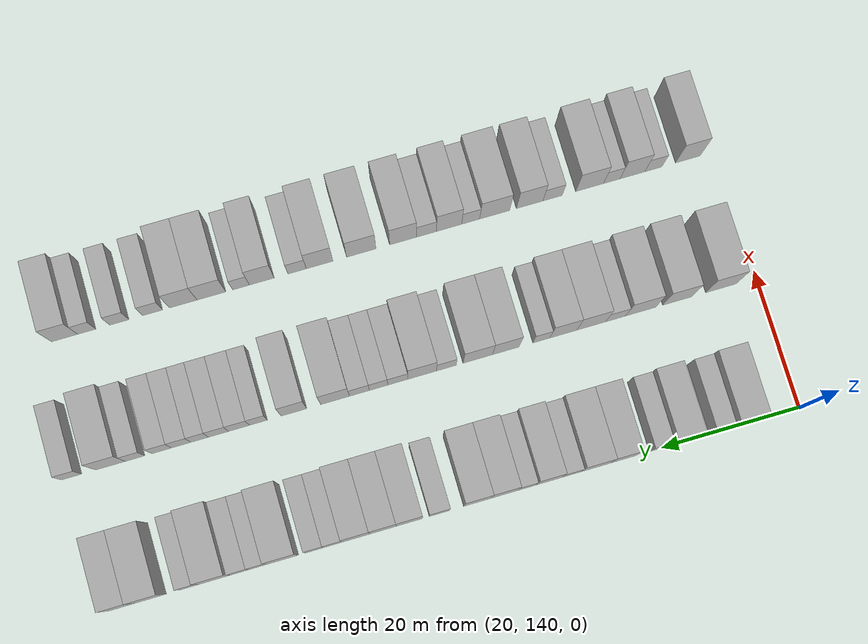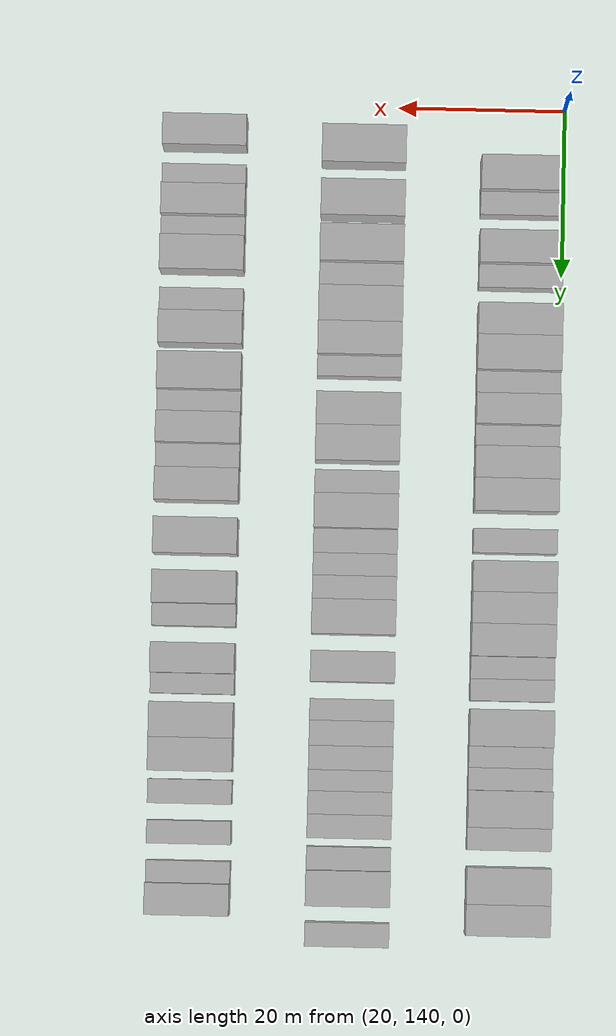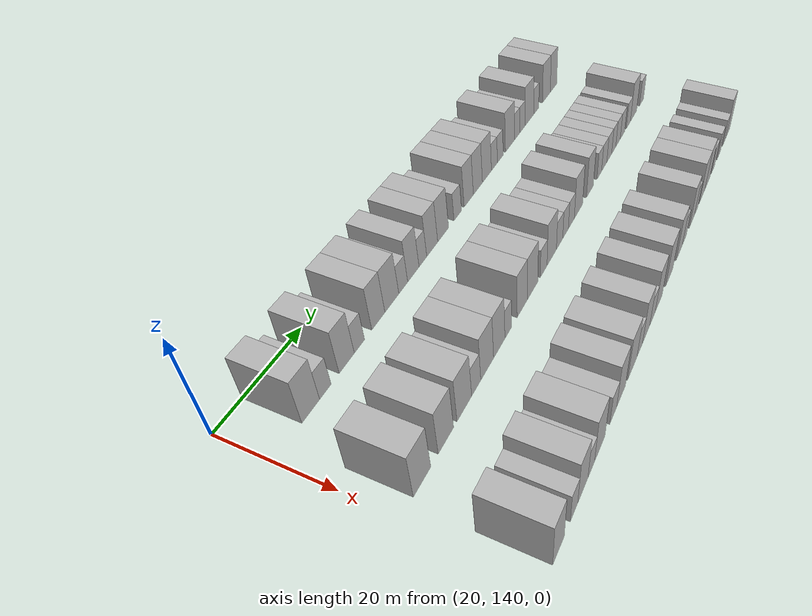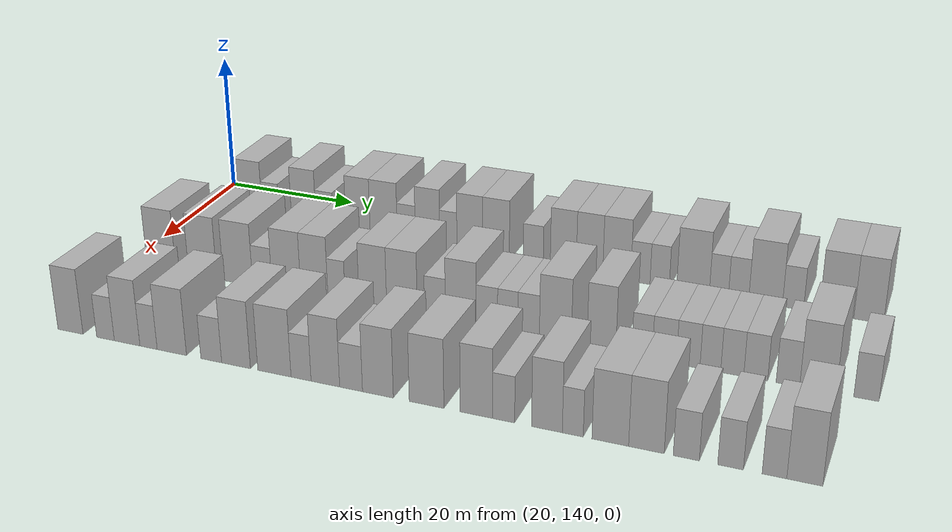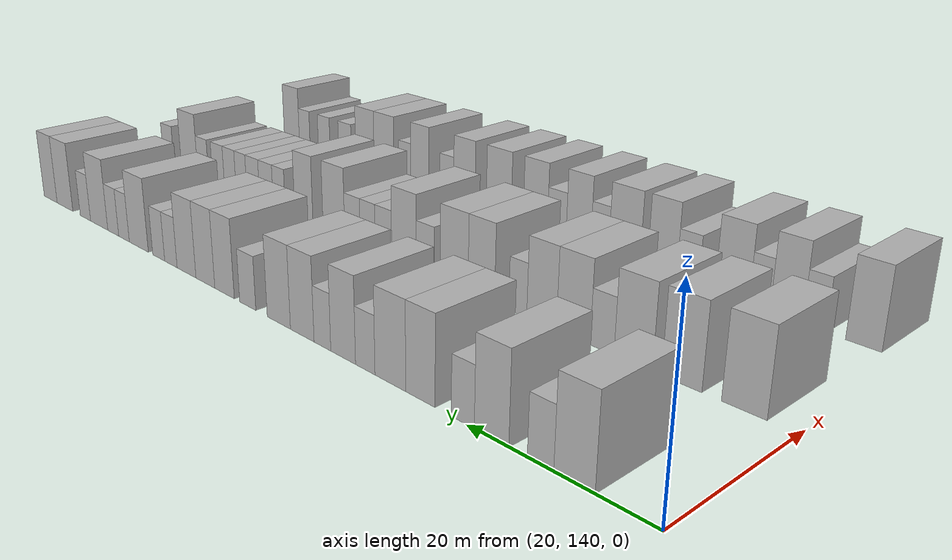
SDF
<sdf version="1.6">
 <world name="default">
  <model name="building_101">
   <static>1</static>
   <pose>25.0000 148.2969 0 0.000000 0.000000 0.000000</pose>
   <link name="link">
    <pose>0 0 4.50 0 0 0</pose>
    <collision name="collision"><geometry><box><size>10.0000 4.1255 9.0000</size></box></geometry></collision>
    <visual name="visual">
     <cast_shadows>0</cast_shadows>
     <geometry><box><size>10.0000 4.1255 9.0000</size></box></geometry>
     <material>
      <script>
       <uri>model://HANNAS_wall/materials/scripts</uri>
       <uri>model://HANNAS_wall/materials/textures</uri>
       <name>vrc/HANNAS_wall</name>
      </script>
     </material>
    </visual>
   </link>
  </model>
  <model name="building_102">
   <static>1</static>
   <pose>25.0000 151.7468 0 0.000000 0.000000 0.000000</pose>
   <link name="link">
    <pose>0 0 3.00 0 0 0</pose>
    <collision name="collision"><geometry><box><size>10.0000 2.7741 6.0000</size></box></geometry></collision>
    <visual name="visual">
     <cast_shadows>0</cast_shadows>
     <geometry><box><size>10.0000 2.7741 6.0000</size></box></geometry>
     <material>
      <script>
       <uri>model://HANNAS_wall/materials/scripts</uri>
       <uri>model://HANNAS_wall/materials/textures</uri>
       <name>vrc/HANNAS_wall</name>
      </script>
     </material>
    </visual>
   </link>
  </model>
  <model name="building_103">
   <static>1</static>
   <pose>25.0000 157.0966 0 0.000000 0.000000 0.000000</pose>
   <link name="link">
    <pose>0 0 4.50 0 0 0</pose>
    <collision name="collision"><geometry><box><size>10.0000 3.9255 9.0000</size></box></geometry></collision>
    <visual name="visual">
     <cast_shadows>0</cast_shadows>
     <geometry><box><size>10.0000 3.9255 9.0000</size></box></geometry>
     <material>
      <script>
       <uri>model://HANNAS_wall/materials/scripts</uri>
       <uri>model://HANNAS_wall/materials/textures</uri>
       <name>vrc/HANNAS_wall</name>
      </script>
     </material>
    </visual>
   </link>
  </model>
  <model name="building_104">
   <static>1</static>
   <pose>25.0000 160.4372 0 0.000000 0.000000 0.000000</pose>
   <link name="link">
    <pose>0 0 3.00 0 0 0</pose>
    <collision name="collision"><geometry><box><size>10.0000 2.7559 6.0000</size></box></geometry></collision>
    <visual name="visual">
     <cast_shadows>0</cast_shadows>
     <geometry><box><size>10.0000 2.7559 6.0000</size></box></geometry>
     <material>
      <script>
       <uri>model://HANNAS_wall/materials/scripts</uri>
       <uri>model://HANNAS_wall/materials/textures</uri>
       <name>vrc/HANNAS_wall</name>
      </script>
     </material>
    </visual>
   </link>
  </model>
  <model name="building_105">
   <static>1</static>
   <pose>25.0000 165.6991 0 0.000000 0.000000 0.000000</pose>
   <link name="link">
    <pose>0 0 4.50 0 0 0</pose>
    <collision name="collision"><geometry><box><size>10.0000 3.7678 9.0000</size></box></geometry></collision>
    <visual name="visual">
     <cast_shadows>0</cast_shadows>
     <geometry><box><size>10.0000 3.7678 9.0000</size></box></geometry>
     <material>
      <script>
       <uri>model://HANNAS_wall/materials/scripts</uri>
       <uri>model://HANNAS_wall/materials/textures</uri>
       <name>vrc/HANNAS_wall</name>
      </script>
     </material>
    </visual>
   </link>
  </model>
  <model name="building_106">
   <static>1</static>
   <pose>25.0000 169.6769 0 0.000000 0.000000 0.000000</pose>
   <link name="link">
    <pose>0 0 4.50 0 0 0</pose>
    <collision name="collision"><geometry><box><size>10.0000 4.1878 9.0000</size></box></geometry></collision>
    <visual name="visual">
     <cast_shadows>0</cast_shadows>
     <geometry><box><size>10.0000 4.1878 9.0000</size></box></geometry>
     <material>
      <script>
       <uri>model://HANNAS_wall/materials/scripts</uri>
       <uri>model://HANNAS_wall/materials/textures</uri>
       <name>vrc/HANNAS_wall</name>
      </script>
     </material>
    </visual>
   </link>
  </model>
  <model name="building_107">
   <static>1</static>
   <pose>25.0000 173.1553 0 0.000000 0.000000 0.000000</pose>
   <link name="link">
    <pose>0 0 3.00 0 0 0</pose>
    <collision name="collision"><geometry><box><size>10.0000 2.7689 6.0000</size></box></geometry></collision>
    <visual name="visual">
     <cast_shadows>0</cast_shadows>
     <geometry><box><size>10.0000 2.7689 6.0000</size></box></geometry>
     <material>
      <script>
       <uri>model://HANNAS_wall/materials/scripts</uri>
       <uri>model://HANNAS_wall/materials/textures</uri>
       <name>vrc/HANNAS_wall</name>
      </script>
     </material>
    </visual>
   </link>
  </model>
  <model name="building_108">
   <static>1</static>
   <pose>25.0000 176.3779 0 0.000000 0.000000 0.000000</pose>
   <link name="link">
    <pose>0 0 4.50 0 0 0</pose>
    <collision name="collision"><geometry><box><size>10.0000 3.6763 9.0000</size></box></geometry></collision>
    <visual name="visual">
     <cast_shadows>0</cast_shadows>
     <geometry><box><size>10.0000 3.6763 9.0000</size></box></geometry>
     <material>
      <script>
       <uri>model://HANNAS_wall/materials/scripts</uri>
       <uri>model://HANNAS_wall/materials/textures</uri>
       <name>vrc/HANNAS_wall</name>
      </script>
     </material>
    </visual>
   </link>
  </model>
  <model name="building_109">
   <static>1</static>
   <pose>25.0000 179.5077 0 0.000000 0.000000 0.000000</pose>
   <link name="link">
    <pose>0 0 3.00 0 0 0</pose>
    <collision name="collision"><geometry><box><size>10.0000 2.5833 6.0000</size></box></geometry></collision>
    <visual name="visual">
     <cast_shadows>0</cast_shadows>
     <geometry><box><size>10.0000 2.5833 6.0000</size></box></geometry>
     <material>
      <script>
       <uri>model://HANNAS_wall/materials/scripts</uri>
       <uri>model://HANNAS_wall/materials/textures</uri>
       <name>vrc/HANNAS_wall</name>
      </script>
     </material>
    </visual>
   </link>
  </model>
  <model name="building_110">
   <static>1</static>
   <pose>25.0000 182.6997 0 0.000000 0.000000 0.000000</pose>
   <link name="link">
    <pose>0 0 4.50 0 0 0</pose>
    <collision name="collision"><geometry><box><size>10.0000 3.8007 9.0000</size></box></geometry></collision>
    <visual name="visual">
     <cast_shadows>0</cast_shadows>
     <geometry><box><size>10.0000 3.8007 9.0000</size></box></geometry>
     <material>
      <script>
       <uri>model://HANNAS_wall/materials/scripts</uri>
       <uri>model://HANNAS_wall/materials/textures</uri>
       <name>vrc/HANNAS_wall</name>
      </script>
     </material>
    </visual>
   </link>
  </model>
  <model name="building_111">
   <static>1</static>
   <pose>25.0000 186.5590 0 0.000000 0.000000 0.000000</pose>
   <link name="link">
    <pose>0 0 4.50 0 0 0</pose>
    <collision name="collision"><geometry><box><size>10.0000 3.9180 9.0000</size></box></geometry></collision>
    <visual name="visual">
     <cast_shadows>0</cast_shadows>
     <geometry><box><size>10.0000 3.9180 9.0000</size></box></geometry>
     <material>
      <script>
       <uri>model://HANNAS_wall/materials/scripts</uri>
       <uri>model://HANNAS_wall/materials/textures</uri>
       <name>vrc/HANNAS_wall</name>
      </script>
     </material>
    </visual>
   </link>
  </model>
  <model name="building_112">
   <static>1</static>
   <pose>25.0000 191.9698 0 0.000000 0.000000 0.000000</pose>
   <link name="link">
    <pose>0 0 3.00 0 0 0</pose>
    <collision name="collision"><geometry><box><size>10.0000 2.9034 6.0000</size></box></geometry></collision>
    <visual name="visual">
     <cast_shadows>0</cast_shadows>
     <geometry><box><size>10.0000 2.9034 6.0000</size></box></geometry>
     <material>
      <script>
       <uri>model://HANNAS_wall/materials/scripts</uri>
       <uri>model://HANNAS_wall/materials/textures</uri>
       <name>vrc/HANNAS_wall</name>
      </script>
     </material>
    </visual>
   </link>
  </model>
  <model name="building_113">
   <static>1</static>
   <pose>25.0000 196.2651 0 0.000000 0.000000 0.000000</pose>
   <link name="link">
    <pose>0 0 4.50 0 0 0</pose>
    <collision name="collision"><geometry><box><size>10.0000 3.6873 9.0000</size></box></geometry></collision>
    <visual name="visual">
     <cast_shadows>0</cast_shadows>
     <geometry><box><size>10.0000 3.6873 9.0000</size></box></geometry>
     <material>
      <script>
       <uri>model://HANNAS_wall/materials/scripts</uri>
       <uri>model://HANNAS_wall/materials/textures</uri>
       <name>vrc/HANNAS_wall</name>
      </script>
     </material>
    </visual>
   </link>
  </model>
  <model name="building_114">
   <static>1</static>
   <pose>25.0000 199.9749 0 0.000000 0.000000 0.000000</pose>
   <link name="link">
    <pose>0 0 4.50 0 0 0</pose>
    <collision name="collision"><geometry><box><size>10.0000 3.7323 9.0000</size></box></geometry></collision>
    <visual name="visual">
     <cast_shadows>0</cast_shadows>
     <geometry><box><size>10.0000 3.7323 9.0000</size></box></geometry>
     <material>
      <script>
       <uri>model://HANNAS_wall/materials/scripts</uri>
       <uri>model://HANNAS_wall/materials/textures</uri>
       <name>vrc/HANNAS_wall</name>
      </script>
     </material>
    </visual>
   </link>
  </model>
  <model name="building_115">
   <static>1</static>
   <pose>25.0000 203.7826 0 0.000000 0.000000 0.000000</pose>
   <link name="link">
    <pose>0 0 4.50 0 0 0</pose>
    <collision name="collision"><geometry><box><size>10.0000 3.8831 9.0000</size></box></geometry></collision>
    <visual name="visual">
     <cast_shadows>0</cast_shadows>
     <geometry><box><size>10.0000 3.8831 9.0000</size></box></geometry>
     <material>
      <script>
       <uri>model://HANNAS_wall/materials/scripts</uri>
       <uri>model://HANNAS_wall/materials/textures</uri>
       <name>vrc/HANNAS_wall</name>
      </script>
     </material>
    </visual>
   </link>
  </model>
  <model name="building_116">
   <static>1</static>
   <pose>25.0000 207.0530 0 0.000000 0.000000 0.000000</pose>
   <link name="link">
    <pose>0 0 3.00 0 0 0</pose>
    <collision name="collision"><geometry><box><size>10.0000 2.6576 6.0000</size></box></geometry></collision>
    <visual name="visual">
     <cast_shadows>0</cast_shadows>
     <geometry><box><size>10.0000 2.6576 6.0000</size></box></geometry>
     <material>
      <script>
       <uri>model://HANNAS_wall/materials/scripts</uri>
       <uri>model://HANNAS_wall/materials/textures</uri>
       <name>vrc/HANNAS_wall</name>
      </script>
     </material>
    </visual>
   </link>
  </model>
  <model name="building_117">
   <static>1</static>
   <pose>25.0000 209.6922 0 0.000000 0.000000 0.000000</pose>
   <link name="link">
    <pose>0 0 3.00 0 0 0</pose>
    <collision name="collision"><geometry><box><size>10.0000 2.6209 6.0000</size></box></geometry></collision>
    <visual name="visual">
     <cast_shadows>0</cast_shadows>
     <geometry><box><size>10.0000 2.6209 6.0000</size></box></geometry>
     <material>
      <script>
       <uri>model://HANNAS_wall/materials/scripts</uri>
       <uri>model://HANNAS_wall/materials/textures</uri>
       <name>vrc/HANNAS_wall</name>
      </script>
     </material>
    </visual>
   </link>
  </model>
  <model name="building_118">
   <static>1</static>
   <pose>25.0000 214.1932 0 0.000000 0.000000 0.000000</pose>
   <link name="link">
    <pose>0 0 4.50 0 0 0</pose>
    <collision name="collision"><geometry><box><size>10.0000 4.3811 9.0000</size></box></geometry></collision>
    <visual name="visual">
     <cast_shadows>0</cast_shadows>
     <geometry><box><size>10.0000 4.3811 9.0000</size></box></geometry>
     <material>
      <script>
       <uri>model://HANNAS_wall/materials/scripts</uri>
       <uri>model://HANNAS_wall/materials/textures</uri>
       <name>vrc/HANNAS_wall</name>
      </script>
     </material>
    </visual>
   </link>
  </model>
  <model name="building_119">
   <static>1</static>
   <pose>25.0000 217.6492 0 0.000000 0.000000 0.000000</pose>
   <link name="link">
    <pose>0 0 3.00 0 0 0</pose>
    <collision name="collision"><geometry><box><size>10.0000 2.5310 6.0000</size></box></geometry></collision>
    <visual name="visual">
     <cast_shadows>0</cast_shadows>
     <geometry><box><size>10.0000 2.5310 6.0000</size></box></geometry>
     <material>
      <script>
       <uri>model://HANNAS_wall/materials/scripts</uri>
       <uri>model://HANNAS_wall/materials/textures</uri>
       <name>vrc/HANNAS_wall</name>
      </script>
     </material>
    </visual>
   </link>
  </model>
  <model name="building_120">
   <static>1</static>
   <pose>25.0000 220.2503 0 0.000000 0.000000 0.000000</pose>
   <link name="link">
    <pose>0 0 3.00 0 0 0</pose>
    <collision name="collision"><geometry><box><size>10.0000 2.6712 6.0000</size></box></geometry></collision>
    <visual name="visual">
     <cast_shadows>0</cast_shadows>
     <geometry><box><size>10.0000 2.6712 6.0000</size></box></geometry>
     <material>
      <script>
       <uri>model://HANNAS_wall/materials/scripts</uri>
       <uri>model://HANNAS_wall/materials/textures</uri>
       <name>vrc/HANNAS_wall</name>
      </script>
     </material>
    </visual>
   </link>
  </model>
  <model name="building_121">
   <static>1</static>
   <pose>25.0000 223.7734 0 0.000000 0.000000 0.000000</pose>
   <link name="link">
    <pose>0 0 4.50 0 0 0</pose>
    <collision name="collision"><geometry><box><size>10.0000 4.3749 9.0000</size></box></geometry></collision>
    <visual name="visual">
     <cast_shadows>0</cast_shadows>
     <geometry><box><size>10.0000 4.3749 9.0000</size></box></geometry>
     <material>
      <script>
       <uri>model://HANNAS_wall/materials/scripts</uri>
       <uri>model://HANNAS_wall/materials/textures</uri>
       <name>vrc/HANNAS_wall</name>
      </script>
     </material>
    </visual>
   </link>
  </model>
  <model name="building_122">
   <static>1</static>
   <pose>25.0000 227.3215 0 0.000000 0.000000 0.000000</pose>
   <link name="link">
    <pose>0 0 3.00 0 0 0</pose>
    <collision name="collision"><geometry><box><size>10.0000 2.7213 6.0000</size></box></geometry></collision>
    <visual name="visual">
     <cast_shadows>0</cast_shadows>
     <geometry><box><size>10.0000 2.7213 6.0000</size></box></geometry>
     <material>
      <script>
       <uri>model://HANNAS_wall/materials/scripts</uri>
       <uri>model://HANNAS_wall/materials/textures</uri>
       <name>vrc/HANNAS_wall</name>
      </script>
     </material>
    </visual>
   </link>
  </model>
  <model name="building_123">
   <static>1</static>
   <pose>25.0000 232.8579 0 0.000000 0.000000 0.000000</pose>
   <link name="link">
    <pose>0 0 4.50 0 0 0</pose>
    <collision name="collision"><geometry><box><size>10.0000 4.3513 9.0000</size></box></geometry></collision>
    <visual name="visual">
     <cast_shadows>0</cast_shadows>
     <geometry><box><size>10.0000 4.3513 9.0000</size></box></geometry>
     <material>
      <script>
       <uri>model://HANNAS_wall/materials/scripts</uri>
       <uri>model://HANNAS_wall/materials/textures</uri>
       <name>vrc/HANNAS_wall</name>
      </script>
     </material>
    </visual>
   </link>
  </model>
  <model name="building_124">
   <static>1</static>
   <pose>25.0000 236.8847 0 0.000000 0.000000 0.000000</pose>
   <link name="link">
    <pose>0 0 4.50 0 0 0</pose>
    <collision name="collision"><geometry><box><size>10.0000 3.7024 9.0000</size></box></geometry></collision>
    <visual name="visual">
     <cast_shadows>0</cast_shadows>
     <geometry><box><size>10.0000 3.7024 9.0000</size></box></geometry>
     <material>
      <script>
       <uri>model://HANNAS_wall/materials/scripts</uri>
       <uri>model://HANNAS_wall/materials/textures</uri>
       <name>vrc/HANNAS_wall</name>
      </script>
     </material>
    </visual>
   </link>
  </model>
  <model name="building_219">
   <static>1</static>
   <pose>44.0000 145.2518 0 0.000000 0.000000 0.000000</pose>
   <link name="link">
    <pose>0 0 4.50 0 0 0</pose>
    <collision name="collision"><geometry><box><size>10.0000 4.4981 9.0000</size></box></geometry></collision>
    <visual name="visual">
     <cast_shadows>0</cast_shadows>
     <geometry><box><size>10.0000 4.4981 9.0000</size></box></geometry>
     <material>
      <script>
       <uri>model://HANNAS_wall/materials/scripts</uri>
       <uri>model://HANNAS_wall/materials/textures</uri>
       <name>vrc/HANNAS_wall</name>
      </script>
     </material>
    </visual>
   </link>
  </model>
  <model name="building_220">
   <static>1</static>
   <pose>44.0000 151.6624 0 0.000000 0.000000 0.000000</pose>
   <link name="link">
    <pose>0 0 4.50 0 0 0</pose>
    <collision name="collision"><geometry><box><size>10.0000 4.3231 9.0000</size></box></geometry></collision>
    <visual name="visual">
     <cast_shadows>0</cast_shadows>
     <geometry><box><size>10.0000 4.3231 9.0000</size></box></geometry>
     <material>
      <script>
       <uri>model://HANNAS_wall/materials/scripts</uri>
       <uri>model://HANNAS_wall/materials/textures</uri>
       <name>vrc/HANNAS_wall</name>
      </script>
     </material>
    </visual>
   </link>
  </model>
  <model name="building_221">
   <static>1</static>
   <pose>44.0000 157.0381 0 0.000000 0.000000 0.000000</pose>
   <link name="link">
    <pose>0 0 4.50 0 0 0</pose>
    <collision name="collision"><geometry><box><size>10.0000 4.4282 9.0000</size></box></geometry></collision>
    <visual name="visual">
     <cast_shadows>0</cast_shadows>
     <geometry><box><size>10.0000 4.4282 9.0000</size></box></geometry>
     <material>
      <script>
       <uri>model://HANNAS_wall/materials/scripts</uri>
       <uri>model://HANNAS_wall/materials/textures</uri>
       <name>vrc/HANNAS_wall</name>
      </script>
     </material>
    </visual>
   </link>
  </model>
  <model name="building_222">
   <static>1</static>
   <pose>44.0000 160.6944 0 0.000000 0.000000 0.000000</pose>
   <link name="link">
    <pose>0 0 3.00 0 0 0</pose>
    <collision name="collision"><geometry><box><size>10.0000 2.8845 6.0000</size></box></geometry></collision>
    <visual name="visual">
     <cast_shadows>0</cast_shadows>
     <geometry><box><size>10.0000 2.8845 6.0000</size></box></geometry>
     <material>
      <script>
       <uri>model://HANNAS_wall/materials/scripts</uri>
       <uri>model://HANNAS_wall/materials/textures</uri>
       <name>vrc/HANNAS_wall</name>
      </script>
     </material>
    </visual>
   </link>
  </model>
  <model name="building_223">
   <static>1</static>
   <pose>44.0000 164.2596 0 0.000000 0.000000 0.000000</pose>
   <link name="link">
    <pose>0 0 4.50 0 0 0</pose>
    <collision name="collision"><geometry><box><size>10.0000 4.2458 9.0000</size></box></geometry></collision>
    <visual name="visual">
     <cast_shadows>0</cast_shadows>
     <geometry><box><size>10.0000 4.2458 9.0000</size></box></geometry>
     <material>
      <script>
       <uri>model://HANNAS_wall/materials/scripts</uri>
       <uri>model://HANNAS_wall/materials/textures</uri>
       <name>vrc/HANNAS_wall</name>
      </script>
     </material>
    </visual>
   </link>
  </model>
  <model name="building_224">
   <static>1</static>
   <pose>44.0000 168.3524 0 0.000000 0.000000 0.000000</pose>
   <link name="link">
    <pose>0 0 4.50 0 0 0</pose>
    <collision name="collision"><geometry><box><size>10.0000 3.9399 9.0000</size></box></geometry></collision>
    <visual name="visual">
     <cast_shadows>0</cast_shadows>
     <geometry><box><size>10.0000 3.9399 9.0000</size></box></geometry>
     <material>
      <script>
       <uri>model://HANNAS_wall/materials/scripts</uri>
       <uri>model://HANNAS_wall/materials/textures</uri>
       <name>vrc/HANNAS_wall</name>
      </script>
     </material>
    </visual>
   </link>
  </model>
  <model name="building_225">
   <static>1</static>
   <pose>44.0000 171.5598 0 0.000000 0.000000 0.000000</pose>
   <link name="link">
    <pose>0 0 3.00 0 0 0</pose>
    <collision name="collision"><geometry><box><size>10.0000 2.4748 6.0000</size></box></geometry></collision>
    <visual name="visual">
     <cast_shadows>0</cast_shadows>
     <geometry><box><size>10.0000 2.4748 6.0000</size></box></geometry>
     <material>
      <script>
       <uri>model://HANNAS_wall/materials/scripts</uri>
       <uri>model://HANNAS_wall/materials/textures</uri>
       <name>vrc/HANNAS_wall</name>
      </script>
     </material>
    </visual>
   </link>
  </model>
  <model name="building_226">
   <static>1</static>
   <pose>44.0000 176.7424 0 0.000000 0.000000 0.000000</pose>
   <link name="link">
    <pose>0 0 4.50 0 0 0</pose>
    <collision name="collision"><geometry><box><size>10.0000 3.8902 9.0000</size></box></geometry></collision>
    <visual name="visual">
     <cast_shadows>0</cast_shadows>
     <geometry><box><size>10.0000 3.8902 9.0000</size></box></geometry>
     <material>
      <script>
       <uri>model://HANNAS_wall/materials/scripts</uri>
       <uri>model://HANNAS_wall/materials/textures</uri>
       <name>vrc/HANNAS_wall</name>
      </script>
     </material>
    </visual>
   </link>
  </model>
  <model name="building_227">
   <static>1</static>
   <pose>44.0000 180.8184 0 0.000000 0.000000 0.000000</pose>
   <link name="link">
    <pose>0 0 4.50 0 0 0</pose>
    <collision name="collision"><geometry><box><size>10.0000 4.2618 9.0000</size></box></geometry></collision>
    <visual name="visual">
     <cast_shadows>0</cast_shadows>
     <geometry><box><size>10.0000 4.2618 9.0000</size></box></geometry>
     <material>
      <script>
       <uri>model://HANNAS_wall/materials/scripts</uri>
       <uri>model://HANNAS_wall/materials/textures</uri>
       <name>vrc/HANNAS_wall</name>
      </script>
     </material>
    </visual>
   </link>
  </model>
  <model name="building_228">
   <static>1</static>
   <pose>44.0000 185.3786 0 0.000000 0.000000 0.000000</pose>
   <link name="link">
    <pose>0 0 3.00 0 0 0</pose>
    <collision name="collision"><geometry><box><size>10.0000 2.8586 6.0000</size></box></geometry></collision>
    <visual name="visual">
     <cast_shadows>0</cast_shadows>
     <geometry><box><size>10.0000 2.8586 6.0000</size></box></geometry>
     <material>
      <script>
       <uri>model://HANNAS_wall/materials/scripts</uri>
       <uri>model://HANNAS_wall/materials/textures</uri>
       <name>vrc/HANNAS_wall</name>
      </script>
     </material>
    </visual>
   </link>
  </model>
  <model name="building_229">
   <static>1</static>
   <pose>44.0000 188.8712 0 0.000000 0.000000 0.000000</pose>
   <link name="link">
    <pose>0 0 4.50 0 0 0</pose>
    <collision name="collision"><geometry><box><size>10.0000 4.1266 9.0000</size></box></geometry></collision>
    <visual name="visual">
     <cast_shadows>0</cast_shadows>
     <geometry><box><size>10.0000 4.1266 9.0000</size></box></geometry>
     <material>
      <script>
       <uri>model://HANNAS_wall/materials/scripts</uri>
       <uri>model://HANNAS_wall/materials/textures</uri>
       <name>vrc/HANNAS_wall</name>
      </script>
     </material>
    </visual>
   </link>
  </model>
  <model name="building_230">
   <static>1</static>
   <pose>44.0000 192.3795 0 0.000000 0.000000 0.000000</pose>
   <link name="link">
    <pose>0 0 3.00 0 0 0</pose>
    <collision name="collision"><geometry><box><size>10.0000 2.8900 6.0000</size></box></geometry></collision>
    <visual name="visual">
     <cast_shadows>0</cast_shadows>
     <geometry><box><size>10.0000 2.8900 6.0000</size></box></geometry>
     <material>
      <script>
       <uri>model://HANNAS_wall/materials/scripts</uri>
       <uri>model://HANNAS_wall/materials/textures</uri>
       <name>vrc/HANNAS_wall</name>
      </script>
     </material>
    </visual>
   </link>
  </model>
  <model name="building_231">
   <static>1</static>
   <pose>44.0000 195.1591 0 0.000000 0.000000 0.000000</pose>
   <link name="link">
    <pose>0 0 3.00 0 0 0</pose>
    <collision name="collision"><geometry><box><size>10.0000 2.6690 6.0000</size></box></geometry></collision>
    <visual name="visual">
     <cast_shadows>0</cast_shadows>
     <geometry><box><size>10.0000 2.6690 6.0000</size></box></geometry>
     <material>
      <script>
       <uri>model://HANNAS_wall/materials/scripts</uri>
       <uri>model://HANNAS_wall/materials/textures</uri>
       <name>vrc/HANNAS_wall</name>
      </script>
     </material>
    </visual>
   </link>
  </model>
  <model name="building_232">
   <static>1</static>
   <pose>44.0000 197.9209 0 0.000000 0.000000 0.000000</pose>
   <link name="link">
    <pose>0 0 3.00 0 0 0</pose>
    <collision name="collision"><geometry><box><size>10.0000 2.8547 6.0000</size></box></geometry></collision>
    <visual name="visual">
     <cast_shadows>0</cast_shadows>
     <geometry><box><size>10.0000 2.8547 6.0000</size></box></geometry>
     <material>
      <script>
       <uri>model://HANNAS_wall/materials/scripts</uri>
       <uri>model://HANNAS_wall/materials/textures</uri>
       <name>vrc/HANNAS_wall</name>
      </script>
     </material>
    </visual>
   </link>
  </model>
  <model name="building_233">
   <static>1</static>
   <pose>44.0000 201.4194 0 0.000000 0.000000 0.000000</pose>
   <link name="link">
    <pose>0 0 4.50 0 0 0</pose>
    <collision name="collision"><geometry><box><size>10.0000 4.1422 9.0000</size></box></geometry></collision>
    <visual name="visual">
     <cast_shadows>0</cast_shadows>
     <geometry><box><size>10.0000 4.1422 9.0000</size></box></geometry>
     <material>
      <script>
       <uri>model://HANNAS_wall/materials/scripts</uri>
       <uri>model://HANNAS_wall/materials/textures</uri>
       <name>vrc/HANNAS_wall</name>
      </script>
     </material>
    </visual>
   </link>
  </model>
  <model name="building_234">
   <static>1</static>
   <pose>44.0000 207.3234 0 0.000000 0.000000 0.000000</pose>
   <link name="link">
    <pose>0 0 4.50 0 0 0</pose>
    <collision name="collision"><geometry><box><size>10.0000 3.6658 9.0000</size></box></geometry></collision>
    <visual name="visual">
     <cast_shadows>0</cast_shadows>
     <geometry><box><size>10.0000 3.6658 9.0000</size></box></geometry>
     <material>
      <script>
       <uri>model://HANNAS_wall/materials/scripts</uri>
       <uri>model://HANNAS_wall/materials/textures</uri>
       <name>vrc/HANNAS_wall</name>
      </script>
     </material>
    </visual>
   </link>
  </model>
  <model name="building_235">
   <static>1</static>
   <pose>44.0000 212.4355 0 0.000000 0.000000 0.000000</pose>
   <link name="link">
    <pose>0 0 3.00 0 0 0</pose>
    <collision name="collision"><geometry><box><size>10.0000 2.5584 6.0000</size></box></geometry></collision>
    <visual name="visual">
     <cast_shadows>0</cast_shadows>
     <geometry><box><size>10.0000 2.5584 6.0000</size></box></geometry>
     <material>
      <script>
       <uri>model://HANNAS_wall/materials/scripts</uri>
       <uri>model://HANNAS_wall/materials/textures</uri>
       <name>vrc/HANNAS_wall</name>
      </script>
     </material>
    </visual>
   </link>
  </model>
  <model name="building_236">
   <static>1</static>
   <pose>44.0000 215.2101 0 0.000000 0.000000 0.000000</pose>
   <link name="link">
    <pose>0 0 3.00 0 0 0</pose>
    <collision name="collision"><geometry><box><size>10.0000 2.9909 6.0000</size></box></geometry></collision>
    <visual name="visual">
     <cast_shadows>0</cast_shadows>
     <geometry><box><size>10.0000 2.9909 6.0000</size></box></geometry>
     <material>
      <script>
       <uri>model://HANNAS_wall/materials/scripts</uri>
       <uri>model://HANNAS_wall/materials/textures</uri>
       <name>vrc/HANNAS_wall</name>
      </script>
     </material>
    </visual>
   </link>
  </model>
  <model name="building_237">
   <static>1</static>
   <pose>44.0000 218.1411 0 0.000000 0.000000 0.000000</pose>
   <link name="link">
    <pose>0 0 3.00 0 0 0</pose>
    <collision name="collision"><geometry><box><size>10.0000 2.8710 6.0000</size></box></geometry></collision>
    <visual name="visual">
     <cast_shadows>0</cast_shadows>
     <geometry><box><size>10.0000 2.8710 6.0000</size></box></geometry>
     <material>
      <script>
       <uri>model://HANNAS_wall/materials/scripts</uri>
       <uri>model://HANNAS_wall/materials/textures</uri>
       <name>vrc/HANNAS_wall</name>
      </script>
     </material>
    </visual>
   </link>
  </model>
  <model name="building_238">
   <static>1</static>
   <pose>44.0000 220.8334 0 0.000000 0.000000 0.000000</pose>
   <link name="link">
    <pose>0 0 3.00 0 0 0</pose>
    <collision name="collision"><geometry><box><size>10.0000 2.5137 6.0000</size></box></geometry></collision>
    <visual name="visual">
     <cast_shadows>0</cast_shadows>
     <geometry><box><size>10.0000 2.5137 6.0000</size></box></geometry>
     <material>
      <script>
       <uri>model://HANNAS_wall/materials/scripts</uri>
       <uri>model://HANNAS_wall/materials/textures</uri>
       <name>vrc/HANNAS_wall</name>
      </script>
     </material>
    </visual>
   </link>
  </model>
  <model name="building_239">
   <static>1</static>
   <pose>44.0000 223.4696 0 0.000000 0.000000 0.000000</pose>
   <link name="link">
    <pose>0 0 3.00 0 0 0</pose>
    <collision name="collision"><geometry><box><size>10.0000 2.7587 6.0000</size></box></geometry></collision>
    <visual name="visual">
     <cast_shadows>0</cast_shadows>
     <geometry><box><size>10.0000 2.7587 6.0000</size></box></geometry>
     <material>
      <script>
       <uri>model://HANNAS_wall/materials/scripts</uri>
       <uri>model://HANNAS_wall/materials/textures</uri>
       <name>vrc/HANNAS_wall</name>
      </script>
     </material>
    </visual>
   </link>
  </model>
  <model name="building_240">
   <static>1</static>
   <pose>44.0000 226.2653 0 0.000000 0.000000 0.000000</pose>
   <link name="link">
    <pose>0 0 3.00 0 0 0</pose>
    <collision name="collision"><geometry><box><size>10.0000 2.8327 6.0000</size></box></geometry></collision>
    <visual name="visual">
     <cast_shadows>0</cast_shadows>
     <geometry><box><size>10.0000 2.8327 6.0000</size></box></geometry>
     <material>
      <script>
       <uri>model://HANNAS_wall/materials/scripts</uri>
       <uri>model://HANNAS_wall/materials/textures</uri>
       <name>vrc/HANNAS_wall</name>
      </script>
     </material>
    </visual>
   </link>
  </model>
  <model name="building_241">
   <static>1</static>
   <pose>44.0000 230.0597 0 0.000000 0.000000 0.000000</pose>
   <link name="link">
    <pose>0 0 3.00 0 0 0</pose>
    <collision name="collision"><geometry><box><size>10.0000 2.7560 6.0000</size></box></geometry></collision>
    <visual name="visual">
     <cast_shadows>0</cast_shadows>
     <geometry><box><size>10.0000 2.7560 6.0000</size></box></geometry>
     <material>
      <script>
       <uri>model://HANNAS_wall/materials/scripts</uri>
       <uri>model://HANNAS_wall/materials/textures</uri>
       <name>vrc/HANNAS_wall</name>
      </script>
     </material>
    </visual>
   </link>
  </model>
  <model name="building_242">
   <static>1</static>
   <pose>44.0000 233.5442 0 0.000000 0.000000 0.000000</pose>
   <link name="link">
    <pose>0 0 4.50 0 0 0</pose>
    <collision name="collision"><geometry><box><size>10.0000 4.2131 9.0000</size></box></geometry></collision>
    <visual name="visual">
     <cast_shadows>0</cast_shadows>
     <geometry><box><size>10.0000 4.2131 9.0000</size></box></geometry>
     <material>
      <script>
       <uri>model://HANNAS_wall/materials/scripts</uri>
       <uri>model://HANNAS_wall/materials/textures</uri>
       <name>vrc/HANNAS_wall</name>
      </script>
     </material>
    </visual>
   </link>
  </model>
  <model name="building_243">
   <static>1</static>
   <pose>44.0000 239.0768 0 0.000000 0.000000 0.000000</pose>
   <link name="link">
    <pose>0 0 3.00 0 0 0</pose>
    <collision name="collision"><geometry><box><size>10.0000 2.8521 6.0000</size></box></geometry></collision>
    <visual name="visual">
     <cast_shadows>0</cast_shadows>
     <geometry><box><size>10.0000 2.8521 6.0000</size></box></geometry>
     <material>
      <script>
       <uri>model://HANNAS_wall/materials/scripts</uri>
       <uri>model://HANNAS_wall/materials/textures</uri>
       <name>vrc/HANNAS_wall</name>
      </script>
     </material>
    </visual>
   </link>
  </model>
  <model name="building_339">
   <static>1</static>
   <pose>63.0000 144.0006 0 0.000000 0.000000 0.000000</pose>
   <link name="link">
    <pose>0 0 4.50 0 0 0</pose>
    <collision name="collision"><geometry><box><size>10.0000 3.6999 9.0000</size></box></geometry></collision>
    <visual name="visual">
     <cast_shadows>0</cast_shadows>
     <geometry><box><size>10.0000 3.6999 9.0000</size></box></geometry>
     <material>
      <script>
       <uri>model://HANNAS_wall/materials/scripts</uri>
       <uri>model://HANNAS_wall/materials/textures</uri>
       <name>vrc/HANNAS_wall</name>
      </script>
     </material>
    </visual>
   </link>
  </model>
  <model name="building_340">
   <static>1</static>
   <pose>63.0000 149.1304 0 0.000000 0.000000 0.000000</pose>
   <link name="link">
    <pose>0 0 3.00 0 0 0</pose>
    <collision name="collision"><geometry><box><size>10.0000 2.5597 6.0000</size></box></geometry></collision>
    <visual name="visual">
     <cast_shadows>0</cast_shadows>
     <geometry><box><size>10.0000 2.5597 6.0000</size></box></geometry>
     <material>
      <script>
       <uri>model://HANNAS_wall/materials/scripts</uri>
       <uri>model://HANNAS_wall/materials/textures</uri>
       <name>vrc/HANNAS_wall</name>
      </script>
     </material>
    </visual>
   </link>
  </model>
  <model name="building_341">
   <static>1</static>
   <pose>63.0000 152.2503 0 0.000000 0.000000 0.000000</pose>
   <link name="link">
    <pose>0 0 4.50 0 0 0</pose>
    <collision name="collision"><geometry><box><size>10.0000 3.6801 9.0000</size></box></geometry></collision>
    <visual name="visual">
     <cast_shadows>0</cast_shadows>
     <geometry><box><size>10.0000 3.6801 9.0000</size></box></geometry>
     <material>
      <script>
       <uri>model://HANNAS_wall/materials/scripts</uri>
       <uri>model://HANNAS_wall/materials/textures</uri>
       <name>vrc/HANNAS_wall</name>
      </script>
     </material>
    </visual>
   </link>
  </model>
  <model name="building_342">
   <static>1</static>
   <pose>63.0000 155.3136 0 0.000000 0.000000 0.000000</pose>
   <link name="link">
    <pose>0 0 3.00 0 0 0</pose>
    <collision name="collision"><geometry><box><size>10.0000 2.4463 6.0000</size></box></geometry></collision>
    <visual name="visual">
     <cast_shadows>0</cast_shadows>
     <geometry><box><size>10.0000 2.4463 6.0000</size></box></geometry>
     <material>
      <script>
       <uri>model://HANNAS_wall/materials/scripts</uri>
       <uri>model://HANNAS_wall/materials/textures</uri>
       <name>vrc/HANNAS_wall</name>
      </script>
     </material>
    </visual>
   </link>
  </model>
  <model name="building_343">
   <static>1</static>
   <pose>63.0000 158.5960 0 0.000000 0.000000 0.000000</pose>
   <link name="link">
    <pose>0 0 4.50 0 0 0</pose>
    <collision name="collision"><geometry><box><size>10.0000 4.1185 9.0000</size></box></geometry></collision>
    <visual name="visual">
     <cast_shadows>0</cast_shadows>
     <geometry><box><size>10.0000 4.1185 9.0000</size></box></geometry>
     <material>
      <script>
       <uri>model://HANNAS_wall/materials/scripts</uri>
       <uri>model://HANNAS_wall/materials/textures</uri>
       <name>vrc/HANNAS_wall</name>
      </script>
     </material>
    </visual>
   </link>
  </model>
  <model name="building_344">
   <static>1</static>
   <pose>63.0000 164.0866 0 0.000000 0.000000 0.000000</pose>
   <link name="link">
    <pose>0 0 3.00 0 0 0</pose>
    <collision name="collision"><geometry><box><size>10.0000 2.8628 6.0000</size></box></geometry></collision>
    <visual name="visual">
     <cast_shadows>0</cast_shadows>
     <geometry><box><size>10.0000 2.8628 6.0000</size></box></geometry>
     <material>
      <script>
       <uri>model://HANNAS_wall/materials/scripts</uri>
       <uri>model://HANNAS_wall/materials/textures</uri>
       <name>vrc/HANNAS_wall</name>
      </script>
     </material>
    </visual>
   </link>
  </model>
  <model name="building_345">
   <static>1</static>
   <pose>63.0000 167.4718 0 0.000000 0.000000 0.000000</pose>
   <link name="link">
    <pose>0 0 4.50 0 0 0</pose>
    <collision name="collision"><geometry><box><size>10.0000 3.9077 9.0000</size></box></geometry></collision>
    <visual name="visual">
     <cast_shadows>0</cast_shadows>
     <geometry><box><size>10.0000 3.9077 9.0000</size></box></geometry>
     <material>
      <script>
       <uri>model://HANNAS_wall/materials/scripts</uri>
       <uri>model://HANNAS_wall/materials/textures</uri>
       <name>vrc/HANNAS_wall</name>
      </script>
     </material>
    </visual>
   </link>
  </model>
  <model name="building_346">
   <static>1</static>
   <pose>63.0000 172.6389 0 0.000000 0.000000 0.000000</pose>
   <link name="link">
    <pose>0 0 4.50 0 0 0</pose>
    <collision name="collision"><geometry><box><size>10.0000 4.4264 9.0000</size></box></geometry></collision>
    <visual name="visual">
     <cast_shadows>0</cast_shadows>
     <geometry><box><size>10.0000 4.4264 9.0000</size></box></geometry>
     <material>
      <script>
       <uri>model://HANNAS_wall/materials/scripts</uri>
       <uri>model://HANNAS_wall/materials/textures</uri>
       <name>vrc/HANNAS_wall</name>
      </script>
     </material>
    </visual>
   </link>
  </model>
  <model name="building_347">
   <static>1</static>
   <pose>63.0000 176.1703 0 0.000000 0.000000 0.000000</pose>
   <link name="link">
    <pose>0 0 3.00 0 0 0</pose>
    <collision name="collision"><geometry><box><size>10.0000 2.6364 6.0000</size></box></geometry></collision>
    <visual name="visual">
     <cast_shadows>0</cast_shadows>
     <geometry><box><size>10.0000 2.6364 6.0000</size></box></geometry>
     <material>
      <script>
       <uri>model://HANNAS_wall/materials/scripts</uri>
       <uri>model://HANNAS_wall/materials/textures</uri>
       <name>vrc/HANNAS_wall</name>
      </script>
     </material>
    </visual>
   </link>
  </model>
  <model name="building_348">
   <static>1</static>
   <pose>63.0000 179.3517 0 0.000000 0.000000 0.000000</pose>
   <link name="link">
    <pose>0 0 4.50 0 0 0</pose>
    <collision name="collision"><geometry><box><size>10.0000 3.7263 9.0000</size></box></geometry></collision>
    <visual name="visual">
     <cast_shadows>0</cast_shadows>
     <geometry><box><size>10.0000 3.7263 9.0000</size></box></geometry>
     <material>
      <script>
       <uri>model://HANNAS_wall/materials/scripts</uri>
       <uri>model://HANNAS_wall/materials/textures</uri>
       <name>vrc/HANNAS_wall</name>
      </script>
     </material>
    </visual>
   </link>
  </model>
  <model name="building_349">
   <static>1</static>
   <pose>63.0000 182.6811 0 0.000000 0.000000 0.000000</pose>
   <link name="link">
    <pose>0 0 3.00 0 0 0</pose>
    <collision name="collision"><geometry><box><size>10.0000 2.9325 6.0000</size></box></geometry></collision>
    <visual name="visual">
     <cast_shadows>0</cast_shadows>
     <geometry><box><size>10.0000 2.9325 6.0000</size></box></geometry>
     <material>
      <script>
       <uri>model://HANNAS_wall/materials/scripts</uri>
       <uri>model://HANNAS_wall/materials/textures</uri>
       <name>vrc/HANNAS_wall</name>
      </script>
     </material>
    </visual>
   </link>
  </model>
  <model name="building_350">
   <static>1</static>
   <pose>63.0000 186.1021 0 0.000000 0.000000 0.000000</pose>
   <link name="link">
    <pose>0 0 4.50 0 0 0</pose>
    <collision name="collision"><geometry><box><size>10.0000 3.9096 9.0000</size></box></geometry></collision>
    <visual name="visual">
     <cast_shadows>0</cast_shadows>
     <geometry><box><size>10.0000 3.9096 9.0000</size></box></geometry>
     <material>
      <script>
       <uri>model://HANNAS_wall/materials/scripts</uri>
       <uri>model://HANNAS_wall/materials/textures</uri>
       <name>vrc/HANNAS_wall</name>
      </script>
     </material>
    </visual>
   </link>
  </model>
  <model name="building_351">
   <static>1</static>
   <pose>63.0000 192.2026 0 0.000000 0.000000 0.000000</pose>
   <link name="link">
    <pose>0 0 4.50 0 0 0</pose>
    <collision name="collision"><geometry><box><size>10.0000 4.2915 9.0000</size></box></geometry></collision>
    <visual name="visual">
     <cast_shadows>0</cast_shadows>
     <geometry><box><size>10.0000 4.2915 9.0000</size></box></geometry>
     <material>
      <script>
       <uri>model://HANNAS_wall/materials/scripts</uri>
       <uri>model://HANNAS_wall/materials/textures</uri>
       <name>vrc/HANNAS_wall</name>
      </script>
     </material>
    </visual>
   </link>
  </model>
  <model name="building_352">
   <static>1</static>
   <pose>63.0000 198.2909 0 0.000000 0.000000 0.000000</pose>
   <link name="link">
    <pose>0 0 4.50 0 0 0</pose>
    <collision name="collision"><geometry><box><size>10.0000 3.8850 9.0000</size></box></geometry></collision>
    <visual name="visual">
     <cast_shadows>0</cast_shadows>
     <geometry><box><size>10.0000 3.8850 9.0000</size></box></geometry>
     <material>
      <script>
       <uri>model://HANNAS_wall/materials/scripts</uri>
       <uri>model://HANNAS_wall/materials/textures</uri>
       <name>vrc/HANNAS_wall</name>
      </script>
     </material>
    </visual>
   </link>
  </model>
  <model name="building_353">
   <static>1</static>
   <pose>63.0000 201.5663 0 0.000000 0.000000 0.000000</pose>
   <link name="link">
    <pose>0 0 3.00 0 0 0</pose>
    <collision name="collision"><geometry><box><size>10.0000 2.6658 6.0000</size></box></geometry></collision>
    <visual name="visual">
     <cast_shadows>0</cast_shadows>
     <geometry><box><size>10.0000 2.6658 6.0000</size></box></geometry>
     <material>
      <script>
       <uri>model://HANNAS_wall/materials/scripts</uri>
       <uri>model://HANNAS_wall/materials/textures</uri>
       <name>vrc/HANNAS_wall</name>
      </script>
     </material>
    </visual>
   </link>
  </model>
  <model name="building_354">
   <static>1</static>
   <pose>63.0000 206.7003 0 0.000000 0.000000 0.000000</pose>
   <link name="link">
    <pose>0 0 4.50 0 0 0</pose>
    <collision name="collision"><geometry><box><size>10.0000 3.6024 9.0000</size></box></geometry></collision>
    <visual name="visual">
     <cast_shadows>0</cast_shadows>
     <geometry><box><size>10.0000 3.6024 9.0000</size></box></geometry>
     <material>
      <script>
       <uri>model://HANNAS_wall/materials/scripts</uri>
       <uri>model://HANNAS_wall/materials/textures</uri>
       <name>vrc/HANNAS_wall</name>
      </script>
     </material>
    </visual>
   </link>
  </model>
  <model name="building_355">
   <static>1</static>
   <pose>63.0000 209.7144 0 0.000000 0.000000 0.000000</pose>
   <link name="link">
    <pose>0 0 3.00 0 0 0</pose>
    <collision name="collision"><geometry><box><size>10.0000 2.4258 6.0000</size></box></geometry></collision>
    <visual name="visual">
     <cast_shadows>0</cast_shadows>
     <geometry><box><size>10.0000 2.4258 6.0000</size></box></geometry>
     <material>
      <script>
       <uri>model://HANNAS_wall/materials/scripts</uri>
       <uri>model://HANNAS_wall/materials/textures</uri>
       <name>vrc/HANNAS_wall</name>
      </script>
     </material>
    </visual>
   </link>
  </model>
  <model name="building_356">
   <static>1</static>
   <pose>63.0000 214.0131 0 0.000000 0.000000 0.000000</pose>
   <link name="link">
    <pose>0 0 4.50 0 0 0</pose>
    <collision name="collision"><geometry><box><size>10.0000 4.1715 9.0000</size></box></geometry></collision>
    <visual name="visual">
     <cast_shadows>0</cast_shadows>
     <geometry><box><size>10.0000 4.1715 9.0000</size></box></geometry>
     <material>
      <script>
       <uri>model://HANNAS_wall/materials/scripts</uri>
       <uri>model://HANNAS_wall/materials/textures</uri>
       <name>vrc/HANNAS_wall</name>
      </script>
     </material>
    </visual>
   </link>
  </model>
  <model name="building_357">
   <static>1</static>
   <pose>63.0000 218.0929 0 0.000000 0.000000 0.000000</pose>
   <link name="link">
    <pose>0 0 4.50 0 0 0</pose>
    <collision name="collision"><geometry><box><size>10.0000 3.9881 9.0000</size></box></geometry></collision>
    <visual name="visual">
     <cast_shadows>0</cast_shadows>
     <geometry><box><size>10.0000 3.9881 9.0000</size></box></geometry>
     <material>
      <script>
       <uri>model://HANNAS_wall/materials/scripts</uri>
       <uri>model://HANNAS_wall/materials/textures</uri>
       <name>vrc/HANNAS_wall</name>
      </script>
     </material>
    </visual>
   </link>
  </model>
  <model name="building_358">
   <static>1</static>
   <pose>63.0000 222.5228 0 0.000000 0.000000 0.000000</pose>
   <link name="link">
    <pose>0 0 3.00 0 0 0</pose>
    <collision name="collision"><geometry><box><size>10.0000 2.8717 6.0000</size></box></geometry></collision>
    <visual name="visual">
     <cast_shadows>0</cast_shadows>
     <geometry><box><size>10.0000 2.8717 6.0000</size></box></geometry>
     <material>
      <script>
       <uri>model://HANNAS_wall/materials/scripts</uri>
       <uri>model://HANNAS_wall/materials/textures</uri>
       <name>vrc/HANNAS_wall</name>
      </script>
     </material>
    </visual>
   </link>
  </model>
  <model name="building_359">
   <static>1</static>
   <pose>63.0000 227.3418 0 0.000000 0.000000 0.000000</pose>
   <link name="link">
    <pose>0 0 3.00 0 0 0</pose>
    <collision name="collision"><geometry><box><size>10.0000 2.7663 6.0000</size></box></geometry></collision>
    <visual name="visual">
     <cast_shadows>0</cast_shadows>
     <geometry><box><size>10.0000 2.7663 6.0000</size></box></geometry>
     <material>
      <script>
       <uri>model://HANNAS_wall/materials/scripts</uri>
       <uri>model://HANNAS_wall/materials/textures</uri>
       <name>vrc/HANNAS_wall</name>
      </script>
     </material>
    </visual>
   </link>
  </model>
  <model name="building_360">
   <static>1</static>
   <pose>63.0000 232.0287 0 0.000000 0.000000 0.000000</pose>
   <link name="link">
    <pose>0 0 3.00 0 0 0</pose>
    <collision name="collision"><geometry><box><size>10.0000 2.6075 6.0000</size></box></geometry></collision>
    <visual name="visual">
     <cast_shadows>0</cast_shadows>
     <geometry><box><size>10.0000 2.6075 6.0000</size></box></geometry>
     <material>
      <script>
       <uri>model://HANNAS_wall/materials/scripts</uri>
       <uri>model://HANNAS_wall/materials/textures</uri>
       <name>vrc/HANNAS_wall</name>
      </script>
     </material>
    </visual>
   </link>
  </model>
  <model name="building_361">
   <static>1</static>
   <pose>63.0000 235.2139 0 0.000000 0.000000 0.000000</pose>
   <link name="link">
    <pose>0 0 4.50 0 0 0</pose>
    <collision name="collision"><geometry><box><size>10.0000 3.7629 9.0000</size></box></geometry></collision>
    <visual name="visual">
     <cast_shadows>0</cast_shadows>
     <geometry><box><size>10.0000 3.7629 9.0000</size></box></geometry>
     <material>
      <script>
       <uri>model://HANNAS_wall/materials/scripts</uri>
       <uri>model://HANNAS_wall/materials/textures</uri>
       <name>vrc/HANNAS_wall</name>
      </script>
     </material>
    </visual>
   </link>
  </model>
 </world>
</sdf>
